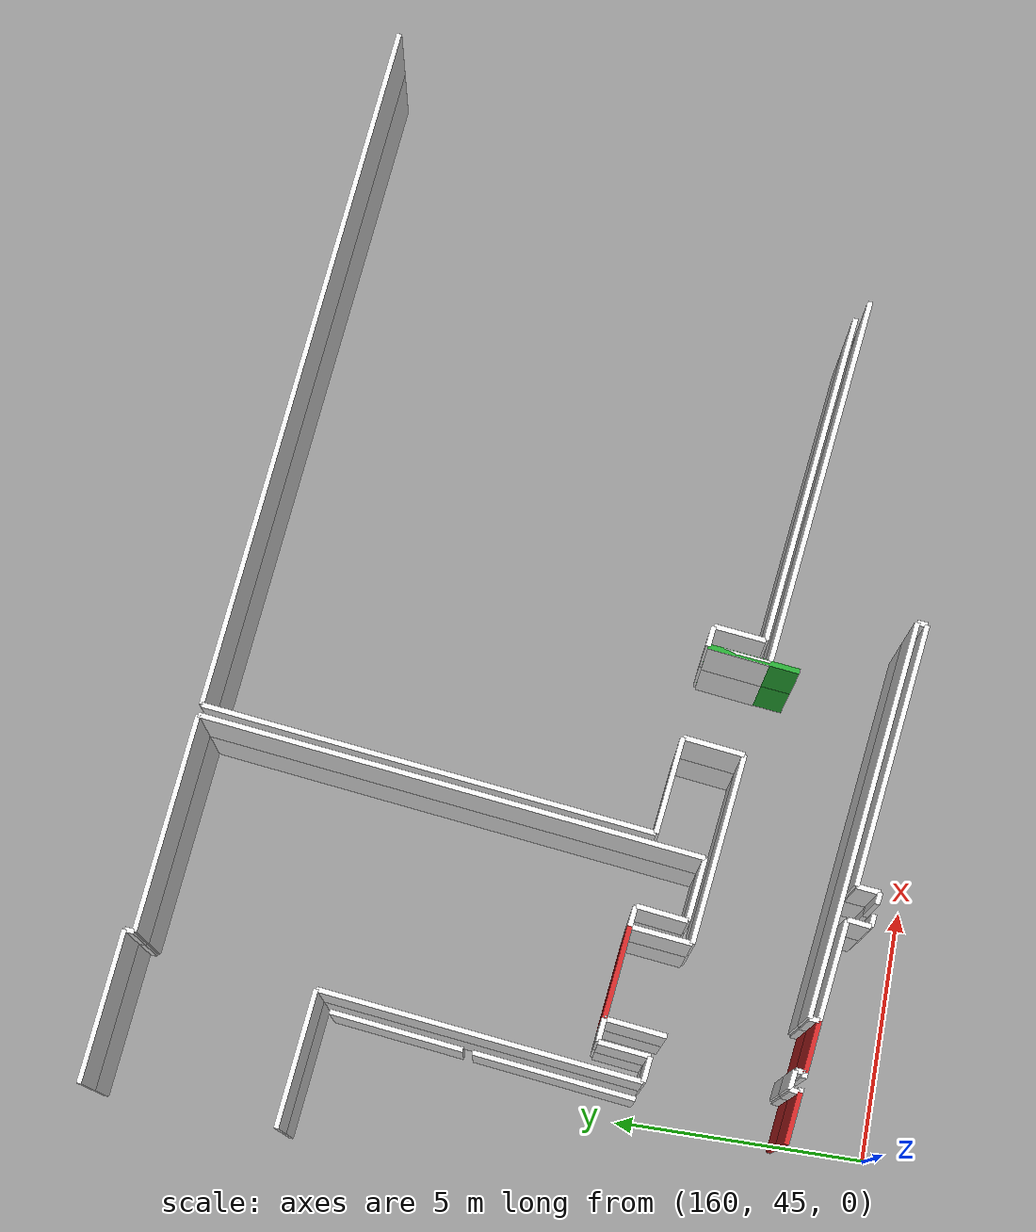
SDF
<sdf version="1.6">
 <world name="default">
  <model name="wall_160.4_46.8_1.5">
   <static>true</static>
   <pose>160.3850000000093 46.81999999983236 1.5 0 0 -0.1206236686924795</pose>
   <link name="link">
    <visual name="visual">
     <geometry><box><size>0.9972462083198822 0.1 3</size></box></geometry>
     <material>
      <script><uri>file://media/materials/scripts/gazebo.material</uri><name>Gazebo/Red</name></script>
     </material>
    </visual>
    <collision name="collision"><geometry><box><size>0.9972462083198822 0.1 3</size></box></geometry></collision>
   </link>
  </model>
  <model name="wall_161.8_46.7_1.5">
   <static>true</static>
   <pose>161.7600000000093 46.66000000014901 1.5 0 0 -0.11942892612851068</pose>
   <link name="link">
    <visual name="visual">
     <geometry><box><size>1.0071742649744493 0.1 3</size></box></geometry>
     <material>
      <script><uri>file://media/materials/scripts/gazebo.material</uri><name>Gazebo/Red</name></script>
     </material>
    </visual>
    <collision name="collision"><geometry><box><size>1.0071742649744493 0.1 3</size></box></geometry></collision>
   </link>
  </model>
  <model name="wall_168.8_48.8_1.5">
   <static>true</static>
   <pose>168.83500000002095 48.825000000186265 1.5 0 0 -1.6875809222415865</pose>
   <link name="link">
    <visual name="visual">
     <geometry><box><size>1.8022763384447233 0.1 3</size></box></geometry>
     <material>
      <script><uri>file://media/materials/scripts/gazebo.material</uri><name>Gazebo/Green</name></script>
     </material>
    </visual>
    <collision name="collision"><geometry><box><size>1.8022763384447233 0.1 3</size></box></geometry></collision>
   </link>
  </model>
  <model name="wall_162.6_50.5_1.5">
   <static>true</static>
   <pose>162.57000000000698 50.484999999869615 1.5 0 0 3.02415796381574</pose>
   <link name="link">
    <visual name="visual">
     <geometry><box><size>1.7923448329168745 0.1 3</size></box></geometry>
     <material>
      <script><uri>file://media/materials/scripts/gazebo.material</uri><name>Gazebo/Red</name></script>
     </material>
    </visual>
    <collision name="collision"><geometry><box><size>1.7923448329168745 0.1 3</size></box></geometry></collision>
   </link>
  </model>
  <model name="wall_160.4_46.8_4.5">
   <static>true</static>
   <pose>160.3850000000093 46.81999999983236 4.5 0 0 -0.1206236686924795</pose>
   <link name="link">
    <visual name="visual">
     <geometry><box><size>0.9972462083198822 0.1 3</size></box></geometry>
     <material>
      <script><uri>file://media/materials/scripts/gazebo.material</uri><name>Gazebo/Red</name></script>
     </material>
    </visual>
    <collision name="collision"><geometry><box><size>0.9972462083198822 0.1 3</size></box></geometry></collision>
   </link>
  </model>
  <model name="wall_161.8_46.7_4.5">
   <static>true</static>
   <pose>161.7600000000093 46.66000000014901 4.5 0 0 -0.11942892612851068</pose>
   <link name="link">
    <visual name="visual">
     <geometry><box><size>1.0071742649744493 0.1 3</size></box></geometry>
     <material>
      <script><uri>file://media/materials/scripts/gazebo.material</uri><name>Gazebo/Red</name></script>
     </material>
    </visual>
    <collision name="collision"><geometry><box><size>1.0071742649744493 0.1 3</size></box></geometry></collision>
   </link>
  </model>
  <model name="wall_168.8_48.8_4.5">
   <static>true</static>
   <pose>168.83500000002095 48.825000000186265 4.5 0 0 -1.6875809222415865</pose>
   <link name="link">
    <visual name="visual">
     <geometry><box><size>1.8022763384447233 0.1 3</size></box></geometry>
     <material>
      <script><uri>file://media/materials/scripts/gazebo.material</uri><name>Gazebo/Green</name></script>
     </material>
    </visual>
    <collision name="collision"><geometry><box><size>1.8022763384447233 0.1 3</size></box></geometry></collision>
   </link>
  </model>
  <model name="wall_162.6_50.5_4.5">
   <static>true</static>
   <pose>162.57000000000698 50.484999999869615 4.5 0 0 3.02415796381574</pose>
   <link name="link">
    <visual name="visual">
     <geometry><box><size>1.7923448329168745 0.1 3</size></box></geometry>
     <material>
      <script><uri>file://media/materials/scripts/gazebo.material</uri><name>Gazebo/Red</name></script>
     </material>
    </visual>
    <collision name="collision"><geometry><box><size>1.7923448329168745 0.1 3</size></box></geometry></collision>
   </link>
  </model>
  <model name="wall_166.1_46.3_1.5">
   <static>true</static>
   <pose>166.14500000001863 46.324999999953434 1.5 0 0 3.0218576675715907</pose>
   <link name="link">
    <visual name="visual">
     <geometry><box><size>7.7857433813364185 0.1 3</size></box></geometry>
     <material>
      <script><uri>file://media/materials/scripts/gazebo.material</uri><name>Gazebo/White</name></script>
     </material>
    </visual>
    <collision name="collision"><geometry><box><size>7.7857433813364185 0.1 3</size></box></geometry></collision>
   </link>
  </model>
  <model name="wall_162.3_46.7_1.5">
   <static>true</static>
   <pose>162.27000000001863 46.69500000006519 1.5 0 0 -1.675673265652709</pose>
   <link name="link">
    <visual name="visual">
     <geometry><box><size>0.19104973169180559 0.1 3</size></box></geometry>
     <material>
      <script><uri>file://media/materials/scripts/gazebo.material</uri><name>Gazebo/White</name></script>
     </material>
    </visual>
    <collision name="collision"><geometry><box><size>0.19104973169180559 0.1 3</size></box></geometry></collision>
   </link>
  </model>
  <model name="wall_161.3_46.8_1.5">
   <static>true</static>
   <pose>161.27000000001863 46.81500000017695 1.5 0 0 1.4659193879370842</pose>
   <link name="link">
    <visual name="visual">
     <geometry><box><size>0.19104973169180559 0.1 3</size></box></geometry>
     <material>
      <script><uri>file://media/materials/scripts/gazebo.material</uri><name>Gazebo/White</name></script>
     </material>
    </visual>
    <collision name="collision"><geometry><box><size>0.19104973169180559 0.1 3</size></box></geometry></collision>
   </link>
  </model>
  <model name="wall_161.1_46.9_1.5">
   <static>true</static>
   <pose>161.09500000000116 46.93500000005588 1.5 0 0 3.007271212150422</pose>
   <link name="link">
    <visual name="visual">
     <geometry><box><size>0.3733630940800139 0.1 3</size></box></geometry>
     <material>
      <script><uri>file://media/materials/scripts/gazebo.material</uri><name>Gazebo/White</name></script>
     </material>
    </visual>
    <collision name="collision"><geometry><box><size>0.3733630940800139 0.1 3</size></box></geometry></collision>
   </link>
  </model>
  <model name="wall_160.9_46.9_1.5">
   <static>true</static>
   <pose>160.89499999998952 46.859999999869615 1.5 0 0 -1.7196862741197598</pose>
   <link name="link">
    <visual name="visual">
     <geometry><box><size>0.20223748434128064 0.1 3</size></box></geometry>
     <material>
      <script><uri>file://media/materials/scripts/gazebo.material</uri><name>Gazebo/White</name></script>
     </material>
    </visual>
    <collision name="collision"><geometry><box><size>0.20223748434128064 0.1 3</size></box></geometry></collision>
   </link>
  </model>
  <model name="wall_161.6_50.0_1.5">
   <static>true</static>
   <pose>161.60500000001048 49.984999999869615 1.5 0 0 1.4474586259198403</pose>
   <link name="link">
    <visual name="visual">
     <geometry><box><size>1.2192620718694447 0.1 3</size></box></geometry>
     <material>
      <script><uri>file://media/materials/scripts/gazebo.material</uri><name>Gazebo/White</name></script>
     </material>
    </visual>
    <collision name="collision"><geometry><box><size>1.2192620718694447 0.1 3</size></box></geometry></collision>
   </link>
  </model>
  <model name="wall_163.4_49.8_1.5">
   <static>true</static>
   <pose>163.39000000001397 49.77499999990687 1.5 0 0 -1.6859866085024886</pose>
   <link name="link">
    <visual name="visual">
     <geometry><box><size>1.2180722474113592 0.1 3</size></box></geometry>
     <material>
      <script><uri>file://media/materials/scripts/gazebo.material</uri><name>Gazebo/White</name></script>
     </material>
    </visual>
    <collision name="collision"><geometry><box><size>1.2180722474113592 0.1 3</size></box></geometry></collision>
   </link>
  </model>
  <model name="wall_165.2_48.9_1.5">
   <static>true</static>
   <pose>165.1600000000035 48.949999999953434 1.5 0 0 -0.11900029336803308</pose>
   <link name="link">
    <visual name="visual">
     <geometry><box><size>3.7062110031539515 0.1 3</size></box></geometry>
     <material>
      <script><uri>file://media/materials/scripts/gazebo.material</uri><name>Gazebo/White</name></script>
     </material>
    </visual>
    <collision name="collision"><geometry><box><size>3.7062110031539515 0.1 3</size></box></geometry></collision>
   </link>
  </model>
  <model name="wall_167.1_49.3_1.5">
   <static>true</static>
   <pose>167.07500000001164 49.330000000074506 1.5 0 0 1.446441332248135</pose>
   <link name="link">
    <visual name="visual">
     <geometry><box><size>1.2093386624324964 0.1 3</size></box></geometry>
     <material>
      <script><uri>file://media/materials/scripts/gazebo.material</uri><name>Gazebo/White</name></script>
     </material>
    </visual>
    <collision name="collision"><geometry><box><size>1.2093386624324964 0.1 3</size></box></geometry></collision>
   </link>
  </model>
  <model name="wall_168.9_49.1_1.5">
   <static>true</static>
   <pose>168.8649999999907 49.11499999999069 1.5 0 0 -1.6941340276703445</pose>
   <link name="link">
    <visual name="visual">
     <geometry><box><size>1.2192620723387293 0.1 3</size></box></geometry>
     <material>
      <script><uri>file://media/materials/scripts/gazebo.material</uri><name>Gazebo/White</name></script>
     </material>
    </visual>
    <collision name="collision"><geometry><box><size>1.2192620723387293 0.1 3</size></box></geometry></collision>
   </link>
  </model>
  <model name="wall_172.4_48.1_1.5">
   <static>true</static>
   <pose>172.40499999999884 48.074999999953434 1.5 0 0 -0.11975615108864926</pose>
   <link name="link">
    <visual name="visual">
     <geometry><box><size>7.2821562740685915 0.1 3</size></box></geometry>
     <material>
      <script><uri>file://media/materials/scripts/gazebo.material</uri><name>Gazebo/White</name></script>
     </material>
    </visual>
    <collision name="collision"><geometry><box><size>7.2821562740685915 0.1 3</size></box></geometry></collision>
   </link>
  </model>
  <model name="wall_164.7_45.8_1.5">
   <static>true</static>
   <pose>164.7050000000163 45.83499999996275 1.5 0 0 -0.12970253828111597</pose>
   <link name="link">
    <visual name="visual">
     <geometry><box><size>0.23194827011012187 0.1 3</size></box></geometry>
     <material>
      <script><uri>file://media/materials/scripts/gazebo.material</uri><name>Gazebo/White</name></script>
     </material>
    </visual>
    <collision name="collision"><geometry><box><size>0.23194827011012187 0.1 3</size></box></geometry></collision>
   </link>
  </model>
  <model name="wall_164.8_46.0_1.5">
   <static>true</static>
   <pose>164.84500000000116 46.049999999813735 1.5 0 0 1.4625257359507529</pose>
   <link name="link">
    <visual name="visual">
     <geometry><box><size>0.46270941201207827 0.1 3</size></box></geometry>
     <material>
      <script><uri>file://media/materials/scripts/gazebo.material</uri><name>Gazebo/White</name></script>
     </material>
    </visual>
    <collision name="collision"><geometry><box><size>0.46270941201207827 0.1 3</size></box></geometry></collision>
   </link>
  </model>
  <model name="wall_167.4_46.0_1.5">
   <static>true</static>
   <pose>167.42999999999302 45.9749999998603 1.5 0 0 -0.11858166439217471</pose>
   <link name="link">
    <visual name="visual">
     <geometry><box><size>5.156209848308469 0.1 3</size></box></geometry>
     <material>
      <script><uri>file://media/materials/scripts/gazebo.material</uri><name>Gazebo/White</name></script>
     </material>
    </visual>
    <collision name="collision"><geometry><box><size>5.156209848308469 0.1 3</size></box></geometry></collision>
   </link>
  </model>
  <model name="wall_160.6_51.4_1.5">
   <static>true</static>
   <pose>160.60999999998603 51.35000000009313 1.5 0 0 1.4487071893822745</pose>
   <link name="link">
    <visual name="visual">
     <geometry><box><size>3.284448203056534 0.1 3</size></box></geometry>
     <material>
      <script><uri>file://media/materials/scripts/gazebo.material</uri><name>Gazebo/White</name></script>
     </material>
    </visual>
    <collision name="collision"><geometry><box><size>3.284448203056534 0.1 3</size></box></geometry></collision>
   </link>
  </model>
  <model name="wall_160.4_59.9_1.5">
   <static>true</static>
   <pose>160.44000000000233 59.93999999994412 1.5 0 0 -0.12022278677294355</pose>
   <link name="link">
    <visual name="visual">
     <geometry><box><size>3.0016662039824453 0.1 3</size></box></geometry>
     <material>
      <script><uri>file://media/materials/scripts/gazebo.material</uri><name>Gazebo/White</name></script>
     </material>
    </visual>
    <collision name="collision"><geometry><box><size>3.0016662039824453 0.1 3</size></box></geometry></collision>
   </link>
  </model>
  <model name="wall_161.9_59.7_1.5">
   <static>true</static>
   <pose>161.9199999999837 59.66499999980442 1.5 0 0 -1.675673265652709</pose>
   <link name="link">
    <visual name="visual">
     <geometry><box><size>0.19104973169180559 0.1 3</size></box></geometry>
     <material>
      <script><uri>file://media/materials/scripts/gazebo.material</uri><name>Gazebo/White</name></script>
     </material>
    </visual>
    <collision name="collision"><geometry><box><size>0.19104973169180559 0.1 3</size></box></geometry></collision>
   </link>
  </model>
  <model name="wall_164.0_59.3_1.5">
   <static>true</static>
   <pose>164.02999999999884 59.31499999994412 1.5 0 0 -0.11970791786700266</pose>
   <link name="link">
    <visual name="visual">
     <geometry><box><size>4.27056202392456 0.1 3</size></box></geometry>
     <material>
      <script><uri>file://media/materials/scripts/gazebo.material</uri><name>Gazebo/White</name></script>
     </material>
    </visual>
    <collision name="collision"><geometry><box><size>4.27056202392456 0.1 3</size></box></geometry></collision>
   </link>
  </model>
  <model name="wall_165.6_54.1_1.5">
   <static>true</static>
   <pose>165.55000000001746 54.11499999999069 1.5 0 0 -1.691540779261425</pose>
   <link name="link">
    <visual name="visual">
     <geometry><box><size>9.96253481813775 0.1 3</size></box></geometry>
     <material>
      <script><uri>file://media/materials/scripts/gazebo.material</uri><name>Gazebo/White</name></script>
     </material>
    </visual>
    <collision name="collision"><geometry><box><size>9.96253481813775 0.1 3</size></box></geometry></collision>
   </link>
  </model>
  <model name="wall_164.3_49.2_1.5">
   <static>true</static>
   <pose>164.3399999999965 49.24499999987893 1.5 0 0 3.0192558198525035</pose>
   <link name="link">
    <visual name="visual">
     <geometry><box><size>1.2291867230188886 0.1 3</size></box></geometry>
     <material>
      <script><uri>file://media/materials/scripts/gazebo.material</uri><name>Gazebo/White</name></script>
     </material>
    </visual>
    <collision name="collision"><geometry><box><size>1.2291867230188886 0.1 3</size></box></geometry></collision>
   </link>
  </model>
  <model name="wall_163.8_49.8_1.5">
   <static>true</static>
   <pose>163.7949999999837 49.824999999953434 1.5 0 0 1.44278726814752</pose>
   <link name="link">
    <visual name="visual">
     <geometry><box><size>1.0183319696888344 0.1 3</size></box></geometry>
     <material>
      <script><uri>file://media/materials/scripts/gazebo.material</uri><name>Gazebo/White</name></script>
     </material>
    </visual>
    <collision name="collision"><geometry><box><size>1.0183319696888344 0.1 3</size></box></geometry></collision>
   </link>
  </model>
  <model name="wall_163.7_50.4_1.5">
   <static>true</static>
   <pose>163.6600000000035 50.35499999998137 1.5 0 0 3.017237659490783</pose>
   <link name="link">
    <visual name="visual">
     <geometry><box><size>0.4031128873571693 0.1 3</size></box></geometry>
     <material>
      <script><uri>file://media/materials/scripts/gazebo.material</uri><name>Gazebo/White</name></script>
     </material>
    </visual>
    <collision name="collision"><geometry><box><size>0.4031128873571693 0.1 3</size></box></geometry></collision>
   </link>
  </model>
  <model name="wall_161.5_50.6_1.5">
   <static>true</static>
   <pose>161.4549999999872 50.61499999999069 1.5 0 0 3.030935431805427</pose>
   <link name="link">
    <visual name="visual">
     <geometry><box><size>0.4527692569492954 0.1 3</size></box></geometry>
     <material>
      <script><uri>file://media/materials/scripts/gazebo.material</uri><name>Gazebo/White</name></script>
     </material>
    </visual>
    <collision name="collision"><geometry><box><size>0.4527692569492954 0.1 3</size></box></geometry></collision>
   </link>
  </model>
  <model name="wall_161.2_50.1_1.5">
   <static>true</static>
   <pose>161.1699999999837 50.13500000000931 1.5 0 0 -1.6890538359013414</pose>
   <link name="link">
    <visual name="visual">
     <geometry><box><size>1.0171037314295985 0.1 3</size></box></geometry>
     <material>
      <script><uri>file://media/materials/scripts/gazebo.material</uri><name>Gazebo/White</name></script>
     </material>
    </visual>
    <collision name="collision"><geometry><box><size>1.0171037314295985 0.1 3</size></box></geometry></collision>
   </link>
  </model>
  <model name="wall_160.9_49.7_1.5">
   <static>true</static>
   <pose>160.8649999999907 49.65999999991618 1.5 0 0 3.019750216455228</pose>
   <link name="link">
    <visual name="visual">
     <geometry><box><size>0.4936598018854468 0.1 3</size></box></geometry>
     <material>
      <script><uri>file://media/materials/scripts/gazebo.material</uri><name>Gazebo/White</name></script>
     </material>
    </visual>
    <collision name="collision"><geometry><box><size>0.4936598018854468 0.1 3</size></box></geometry></collision>
   </link>
  </model>
  <model name="wall_161.0_52.9_1.5">
   <static>true</static>
   <pose>161.0 52.85499999998137 1.5 0 0 1.4513051071243046</pose>
   <link name="link">
    <visual name="visual">
     <geometry><box><size>6.375460767737294 0.1 3</size></box></geometry>
     <material>
      <script><uri>file://media/materials/scripts/gazebo.material</uri><name>Gazebo/White</name></script>
     </material>
    </visual>
    <collision name="collision"><geometry><box><size>6.375460767737294 0.1 3</size></box></geometry></collision>
   </link>
  </model>
  <model name="wall_160.0_56.2_1.5">
   <static>true</static>
   <pose>160.04000000000815 56.17999999993481 1.5 0 0 3.0227523090833937</pose>
   <link name="link">
    <visual name="visual">
     <geometry><box><size>2.6990368652271632 0.1 3</size></box></geometry>
     <material>
      <script><uri>file://media/materials/scripts/gazebo.material</uri><name>Gazebo/White</name></script>
     </material>
    </visual>
    <collision name="collision"><geometry><box><size>2.6990368652271632 0.1 3</size></box></geometry></collision>
   </link>
  </model>
  <model name="wall_172.4_48.3_1.5">
   <static>true</static>
   <pose>172.43499999999767 48.26000000000931 1.5 0 0 3.0208760957199403</pose>
   <link name="link">
    <visual name="visual">
     <geometry><box><size>6.4771367131116735 0.1 3</size></box></geometry>
     <material>
      <script><uri>file://media/materials/scripts/gazebo.material</uri><name>Gazebo/White</name></script>
     </material>
    </visual>
    <collision name="collision"><geometry><box><size>6.4771367131116735 0.1 3</size></box></geometry></collision>
   </link>
  </model>
  <model name="wall_169.3_49.2_1.5">
   <static>true</static>
   <pose>169.27999999999884 49.15999999991618 1.5 0 0 1.453687582178367</pose>
   <link name="link">
    <visual name="visual">
     <geometry><box><size>1.0270345661421774 0.1 3</size></box></geometry>
     <material>
      <script><uri>file://media/materials/scripts/gazebo.material</uri><name>Gazebo/White</name></script>
     </material>
    </visual>
    <collision name="collision"><geometry><box><size>1.0270345661421774 0.1 3</size></box></geometry></collision>
   </link>
  </model>
  <model name="wall_169.1_49.7_1.5">
   <static>true</static>
   <pose>169.14000000001397 49.69500000006519 1.5 0 0 3.01723765836245</pose>
   <link name="link">
    <visual name="visual">
     <geometry><box><size>0.4031128874726857 0.1 3</size></box></geometry>
     <material>
      <script><uri>file://media/materials/scripts/gazebo.material</uri><name>Gazebo/White</name></script>
     </material>
    </visual>
    <collision name="collision"><geometry><box><size>0.4031128874726857 0.1 3</size></box></geometry></collision>
   </link>
  </model>
  <model name="wall_166.2_50.0_1.5">
   <static>true</static>
   <pose>166.21000000002095 50.045000000158325 1.5 0 0 3.0198571684511863</pose>
   <link name="link">
    <visual name="visual">
     <geometry><box><size>1.894016895386348 0.1 3</size></box></geometry>
     <material>
      <script><uri>file://media/materials/scripts/gazebo.material</uri><name>Gazebo/White</name></script>
     </material>
    </visual>
    <collision name="collision"><geometry><box><size>1.894016895386348 0.1 3</size></box></geometry></collision>
   </link>
  </model>
  <model name="wall_165.8_54.6_1.5">
   <static>true</static>
   <pose>165.80999999999767 54.59499999997206 1.5 0 0 1.4496339921387622</pose>
   <link name="link">
    <visual name="visual">
     <geometry><box><size>8.935507819571937 0.1 3</size></box></geometry>
     <material>
      <script><uri>file://media/materials/scripts/gazebo.material</uri><name>Gazebo/White</name></script>
     </material>
    </visual>
    <collision name="collision"><geometry><box><size>8.935507819571937 0.1 3</size></box></geometry></collision>
   </link>
  </model>
  <model name="wall_173.1_58.2_1.5">
   <static>true</static>
   <pose>173.09500000000116 58.21999999997206 1.5 0 0 -0.11951661708533105</pose>
   <link name="link">
    <visual name="visual">
     <geometry><box><size>13.586923860836658 0.1 3</size></box></geometry>
     <material>
      <script><uri>file://media/materials/scripts/gazebo.material</uri><name>Gazebo/White</name></script>
     </material>
    </visual>
    <collision name="collision"><geometry><box><size>13.586923860836658 0.1 3</size></box></geometry></collision>
   </link>
  </model>
  <model name="wall_160.9_46.8_1.5">
   <static>true</static>
   <pose>160.92499999998836 46.75499999988824 1.5 0 0 -0.11065721876040727</pose>
   <link name="link">
    <visual name="visual">
     <geometry><box><size>0.09055385132429387 0.1 3</size></box></geometry>
     <material>
      <script><uri>file://media/materials/scripts/gazebo.material</uri><name>Gazebo/White</name></script>
     </material>
    </visual>
    <collision name="collision"><geometry><box><size>0.09055385132429387 0.1 3</size></box></geometry></collision>
   </link>
  </model>
  <model name="wall_161.2_46.7_1.5">
   <static>true</static>
   <pose>161.20999999999185 46.72500000009313 1.5 0 0 -0.09966865024353948</pose>
   <link name="link">
    <visual name="visual">
     <geometry><box><size>0.10049875622371936 0.1 3</size></box></geometry>
     <material>
      <script><uri>file://media/materials/scripts/gazebo.material</uri><name>Gazebo/White</name></script>
     </material>
    </visual>
    <collision name="collision"><geometry><box><size>0.10049875622371936 0.1 3</size></box></geometry></collision>
   </link>
  </model>
  <model name="wall_163.2_46.5_1.5">
   <static>true</static>
   <pose>163.2399999999907 46.47999999998137 1.5 0 0 -0.12184243713456504</pose>
   <link name="link">
    <visual name="visual">
     <geometry><box><size>1.9746392075417871 0.1 3</size></box></geometry>
     <material>
      <script><uri>file://media/materials/scripts/gazebo.material</uri><name>Gazebo/White</name></script>
     </material>
    </visual>
    <collision name="collision"><geometry><box><size>1.9746392075417871 0.1 3</size></box></geometry></collision>
   </link>
  </model>
  <model name="wall_164.2_46.1_1.5">
   <static>true</static>
   <pose>164.18999999997322 46.12999999988824 1.5 0 0 -1.7004988639562184</pose>
   <link name="link">
    <visual name="visual">
     <geometry><box><size>0.46389654015248694 0.1 3</size></box></geometry>
     <material>
      <script><uri>file://media/materials/scripts/gazebo.material</uri><name>Gazebo/White</name></script>
     </material>
    </visual>
    <collision name="collision"><geometry><box><size>0.46389654015248694 0.1 3</size></box></geometry></collision>
   </link>
  </model>
  <model name="wall_164.3_45.9_1.5">
   <static>true</static>
   <pose>164.27999999999884 45.88500000000931 1.5 0 0 -0.12435499368110904</pose>
   <link name="link">
    <visual name="visual">
     <geometry><box><size>0.24186773247205975 0.1 3</size></box></geometry>
     <material>
      <script><uri>file://media/materials/scripts/gazebo.material</uri><name>Gazebo/White</name></script>
     </material>
    </visual>
    <collision name="collision"><geometry><box><size>0.24186773247205975 0.1 3</size></box></geometry></collision>
   </link>
  </model>
  <model name="wall_161.0_54.5_1.5">
   <static>true</static>
   <pose>160.99499999999534 54.50499999988824 1.5 0 0 1.4478244572426628</pose>
   <link name="link">
    <visual name="visual">
     <geometry><box><size>2.6903159664943592 0.1 3</size></box></geometry>
     <material>
      <script><uri>file://media/materials/scripts/gazebo.material</uri><name>Gazebo/White</name></script>
     </material>
    </visual>
    <collision name="collision"><geometry><box><size>2.6903159664943592 0.1 3</size></box></geometry></collision>
   </link>
  </model>
  <model name="wall_170.0_45.8_4.5">
   <static>true</static>
   <pose>170.0 45.764999999897555 4.5 0 0 1.4659193879370842</pose>
   <link name="link">
    <visual name="visual">
     <geometry><box><size>0.19104973169180559 0.1 3</size></box></geometry>
     <material>
      <script><uri>file://media/materials/scripts/gazebo.material</uri><name>Gazebo/White</name></script>
     </material>
    </visual>
    <collision name="collision"><geometry><box><size>0.19104973169180559 0.1 3</size></box></geometry></collision>
   </link>
  </model>
  <model name="wall_166.1_46.3_4.5">
   <static>true</static>
   <pose>166.14500000001863 46.324999999953434 4.5 0 0 3.0218576675715907</pose>
   <link name="link">
    <visual name="visual">
     <geometry><box><size>7.7857433813364185 0.1 3</size></box></geometry>
     <material>
      <script><uri>file://media/materials/scripts/gazebo.material</uri><name>Gazebo/White</name></script>
     </material>
    </visual>
    <collision name="collision"><geometry><box><size>7.7857433813364185 0.1 3</size></box></geometry></collision>
   </link>
  </model>
  <model name="wall_162.3_46.7_4.5">
   <static>true</static>
   <pose>162.27000000001863 46.69500000006519 4.5 0 0 -1.675673265652709</pose>
   <link name="link">
    <visual name="visual">
     <geometry><box><size>0.19104973169180559 0.1 3</size></box></geometry>
     <material>
      <script><uri>file://media/materials/scripts/gazebo.material</uri><name>Gazebo/White</name></script>
     </material>
    </visual>
    <collision name="collision"><geometry><box><size>0.19104973169180559 0.1 3</size></box></geometry></collision>
   </link>
  </model>
  <model name="wall_161.3_46.8_4.5">
   <static>true</static>
   <pose>161.27000000001863 46.81500000017695 4.5 0 0 1.4659193879370842</pose>
   <link name="link">
    <visual name="visual">
     <geometry><box><size>0.19104973169180559 0.1 3</size></box></geometry>
     <material>
      <script><uri>file://media/materials/scripts/gazebo.material</uri><name>Gazebo/White</name></script>
     </material>
    </visual>
    <collision name="collision"><geometry><box><size>0.19104973169180559 0.1 3</size></box></geometry></collision>
   </link>
  </model>
  <model name="wall_161.1_46.9_4.5">
   <static>true</static>
   <pose>161.09500000000116 46.93500000005588 4.5 0 0 3.007271212150422</pose>
   <link name="link">
    <visual name="visual">
     <geometry><box><size>0.3733630940800139 0.1 3</size></box></geometry>
     <material>
      <script><uri>file://media/materials/scripts/gazebo.material</uri><name>Gazebo/White</name></script>
     </material>
    </visual>
    <collision name="collision"><geometry><box><size>0.3733630940800139 0.1 3</size></box></geometry></collision>
   </link>
  </model>
  <model name="wall_160.9_46.9_4.5">
   <static>true</static>
   <pose>160.89499999998952 46.859999999869615 4.5 0 0 -1.7196862741197598</pose>
   <link name="link">
    <visual name="visual">
     <geometry><box><size>0.20223748434128064 0.1 3</size></box></geometry>
     <material>
      <script><uri>file://media/materials/scripts/gazebo.material</uri><name>Gazebo/White</name></script>
     </material>
    </visual>
    <collision name="collision"><geometry><box><size>0.20223748434128064 0.1 3</size></box></geometry></collision>
   </link>
  </model>
  <model name="wall_161.6_50.0_4.5">
   <static>true</static>
   <pose>161.60500000001048 49.984999999869615 4.5 0 0 1.4474586259198403</pose>
   <link name="link">
    <visual name="visual">
     <geometry><box><size>1.2192620718694447 0.1 3</size></box></geometry>
     <material>
      <script><uri>file://media/materials/scripts/gazebo.material</uri><name>Gazebo/White</name></script>
     </material>
    </visual>
    <collision name="collision"><geometry><box><size>1.2192620718694447 0.1 3</size></box></geometry></collision>
   </link>
  </model>
  <model name="wall_163.4_49.8_4.5">
   <static>true</static>
   <pose>163.39000000001397 49.77499999990687 4.5 0 0 -1.6859866085024886</pose>
   <link name="link">
    <visual name="visual">
     <geometry><box><size>1.2180722474113592 0.1 3</size></box></geometry>
     <material>
      <script><uri>file://media/materials/scripts/gazebo.material</uri><name>Gazebo/White</name></script>
     </material>
    </visual>
    <collision name="collision"><geometry><box><size>1.2180722474113592 0.1 3</size></box></geometry></collision>
   </link>
  </model>
  <model name="wall_165.2_48.9_4.5">
   <static>true</static>
   <pose>165.1600000000035 48.949999999953434 4.5 0 0 -0.11900029336803308</pose>
   <link name="link">
    <visual name="visual">
     <geometry><box><size>3.7062110031539515 0.1 3</size></box></geometry>
     <material>
      <script><uri>file://media/materials/scripts/gazebo.material</uri><name>Gazebo/White</name></script>
     </material>
    </visual>
    <collision name="collision"><geometry><box><size>3.7062110031539515 0.1 3</size></box></geometry></collision>
   </link>
  </model>
  <model name="wall_167.1_49.3_4.5">
   <static>true</static>
   <pose>167.07500000001164 49.330000000074506 4.5 0 0 1.446441332248135</pose>
   <link name="link">
    <visual name="visual">
     <geometry><box><size>1.2093386624324964 0.1 3</size></box></geometry>
     <material>
      <script><uri>file://media/materials/scripts/gazebo.material</uri><name>Gazebo/White</name></script>
     </material>
    </visual>
    <collision name="collision"><geometry><box><size>1.2093386624324964 0.1 3</size></box></geometry></collision>
   </link>
  </model>
  <model name="wall_168.9_49.1_4.5">
   <static>true</static>
   <pose>168.8649999999907 49.11499999999069 4.5 0 0 -1.6941340276703445</pose>
   <link name="link">
    <visual name="visual">
     <geometry><box><size>1.2192620723387293 0.1 3</size></box></geometry>
     <material>
      <script><uri>file://media/materials/scripts/gazebo.material</uri><name>Gazebo/White</name></script>
     </material>
    </visual>
    <collision name="collision"><geometry><box><size>1.2192620723387293 0.1 3</size></box></geometry></collision>
   </link>
  </model>
  <model name="wall_172.4_48.1_4.5">
   <static>true</static>
   <pose>172.40499999999884 48.074999999953434 4.5 0 0 -0.11975615108864926</pose>
   <link name="link">
    <visual name="visual">
     <geometry><box><size>7.2821562740685915 0.1 3</size></box></geometry>
     <material>
      <script><uri>file://media/materials/scripts/gazebo.material</uri><name>Gazebo/White</name></script>
     </material>
    </visual>
    <collision name="collision"><geometry><box><size>7.2821562740685915 0.1 3</size></box></geometry></collision>
   </link>
  </model>
  <model name="wall_164.7_45.8_4.5">
   <static>true</static>
   <pose>164.7050000000163 45.83499999996275 4.5 0 0 -0.12970253828111597</pose>
   <link name="link">
    <visual name="visual">
     <geometry><box><size>0.23194827011012187 0.1 3</size></box></geometry>
     <material>
      <script><uri>file://media/materials/scripts/gazebo.material</uri><name>Gazebo/White</name></script>
     </material>
    </visual>
    <collision name="collision"><geometry><box><size>0.23194827011012187 0.1 3</size></box></geometry></collision>
   </link>
  </model>
  <model name="wall_164.8_46.0_4.5">
   <static>true</static>
   <pose>164.84500000000116 46.049999999813735 4.5 0 0 1.4625257359507529</pose>
   <link name="link">
    <visual name="visual">
     <geometry><box><size>0.46270941201207827 0.1 3</size></box></geometry>
     <material>
      <script><uri>file://media/materials/scripts/gazebo.material</uri><name>Gazebo/White</name></script>
     </material>
    </visual>
    <collision name="collision"><geometry><box><size>0.46270941201207827 0.1 3</size></box></geometry></collision>
   </link>
  </model>
  <model name="wall_167.4_46.0_4.5">
   <static>true</static>
   <pose>167.42999999999302 45.9749999998603 4.5 0 0 -0.11858166439217471</pose>
   <link name="link">
    <visual name="visual">
     <geometry><box><size>5.156209848308469 0.1 3</size></box></geometry>
     <material>
      <script><uri>file://media/materials/scripts/gazebo.material</uri><name>Gazebo/White</name></script>
     </material>
    </visual>
    <collision name="collision"><geometry><box><size>5.156209848308469 0.1 3</size></box></geometry></collision>
   </link>
  </model>
  <model name="wall_160.4_59.9_4.5">
   <static>true</static>
   <pose>160.44000000000233 59.93999999994412 4.5 0 0 -0.12022278677294355</pose>
   <link name="link">
    <visual name="visual">
     <geometry><box><size>3.0016662039824453 0.1 3</size></box></geometry>
     <material>
      <script><uri>file://media/materials/scripts/gazebo.material</uri><name>Gazebo/White</name></script>
     </material>
    </visual>
    <collision name="collision"><geometry><box><size>3.0016662039824453 0.1 3</size></box></geometry></collision>
   </link>
  </model>
  <model name="wall_161.9_59.7_4.5">
   <static>true</static>
   <pose>161.9199999999837 59.66499999980442 4.5 0 0 -1.675673265652709</pose>
   <link name="link">
    <visual name="visual">
     <geometry><box><size>0.19104973169180559 0.1 3</size></box></geometry>
     <material>
      <script><uri>file://media/materials/scripts/gazebo.material</uri><name>Gazebo/White</name></script>
     </material>
    </visual>
    <collision name="collision"><geometry><box><size>0.19104973169180559 0.1 3</size></box></geometry></collision>
   </link>
  </model>
  <model name="wall_164.0_59.3_4.5">
   <static>true</static>
   <pose>164.02999999999884 59.31499999994412 4.5 0 0 -0.11970791786700266</pose>
   <link name="link">
    <visual name="visual">
     <geometry><box><size>4.27056202392456 0.1 3</size></box></geometry>
     <material>
      <script><uri>file://media/materials/scripts/gazebo.material</uri><name>Gazebo/White</name></script>
     </material>
    </visual>
    <collision name="collision"><geometry><box><size>4.27056202392456 0.1 3</size></box></geometry></collision>
   </link>
  </model>
  <model name="wall_165.6_54.1_4.5">
   <static>true</static>
   <pose>165.55000000001746 54.11499999999069 4.5 0 0 -1.691540779261425</pose>
   <link name="link">
    <visual name="visual">
     <geometry><box><size>9.96253481813775 0.1 3</size></box></geometry>
     <material>
      <script><uri>file://media/materials/scripts/gazebo.material</uri><name>Gazebo/White</name></script>
     </material>
    </visual>
    <collision name="collision"><geometry><box><size>9.96253481813775 0.1 3</size></box></geometry></collision>
   </link>
  </model>
  <model name="wall_164.3_49.2_4.5">
   <static>true</static>
   <pose>164.3399999999965 49.24499999987893 4.5 0 0 3.0192558198525035</pose>
   <link name="link">
    <visual name="visual">
     <geometry><box><size>1.2291867230188886 0.1 3</size></box></geometry>
     <material>
      <script><uri>file://media/materials/scripts/gazebo.material</uri><name>Gazebo/White</name></script>
     </material>
    </visual>
    <collision name="collision"><geometry><box><size>1.2291867230188886 0.1 3</size></box></geometry></collision>
   </link>
  </model>
  <model name="wall_163.8_49.8_4.5">
   <static>true</static>
   <pose>163.7949999999837 49.824999999953434 4.5 0 0 1.44278726814752</pose>
   <link name="link">
    <visual name="visual">
     <geometry><box><size>1.0183319696888344 0.1 3</size></box></geometry>
     <material>
      <script><uri>file://media/materials/scripts/gazebo.material</uri><name>Gazebo/White</name></script>
     </material>
    </visual>
    <collision name="collision"><geometry><box><size>1.0183319696888344 0.1 3</size></box></geometry></collision>
   </link>
  </model>
  <model name="wall_163.7_50.4_4.5">
   <static>true</static>
   <pose>163.6600000000035 50.35499999998137 4.5 0 0 3.017237659490783</pose>
   <link name="link">
    <visual name="visual">
     <geometry><box><size>0.4031128873571693 0.1 3</size></box></geometry>
     <material>
      <script><uri>file://media/materials/scripts/gazebo.material</uri><name>Gazebo/White</name></script>
     </material>
    </visual>
    <collision name="collision"><geometry><box><size>0.4031128873571693 0.1 3</size></box></geometry></collision>
   </link>
  </model>
  <model name="wall_161.5_50.6_4.5">
   <static>true</static>
   <pose>161.4549999999872 50.61499999999069 4.5 0 0 3.030935431805427</pose>
   <link name="link">
    <visual name="visual">
     <geometry><box><size>0.4527692569492954 0.1 3</size></box></geometry>
     <material>
      <script><uri>file://media/materials/scripts/gazebo.material</uri><name>Gazebo/White</name></script>
     </material>
    </visual>
    <collision name="collision"><geometry><box><size>0.4527692569492954 0.1 3</size></box></geometry></collision>
   </link>
  </model>
  <model name="wall_161.2_50.1_4.5">
   <static>true</static>
   <pose>161.1699999999837 50.13500000000931 4.5 0 0 -1.6890538359013414</pose>
   <link name="link">
    <visual name="visual">
     <geometry><box><size>1.0171037314295985 0.1 3</size></box></geometry>
     <material>
      <script><uri>file://media/materials/scripts/gazebo.material</uri><name>Gazebo/White</name></script>
     </material>
    </visual>
    <collision name="collision"><geometry><box><size>1.0171037314295985 0.1 3</size></box></geometry></collision>
   </link>
  </model>
  <model name="wall_160.9_49.7_4.5">
   <static>true</static>
   <pose>160.8649999999907 49.65999999991618 4.5 0 0 3.019750216455228</pose>
   <link name="link">
    <visual name="visual">
     <geometry><box><size>0.4936598018854468 0.1 3</size></box></geometry>
     <material>
      <script><uri>file://media/materials/scripts/gazebo.material</uri><name>Gazebo/White</name></script>
     </material>
    </visual>
    <collision name="collision"><geometry><box><size>0.4936598018854468 0.1 3</size></box></geometry></collision>
   </link>
  </model>
  <model name="wall_161.0_52.9_4.5">
   <static>true</static>
   <pose>161.0 52.85499999998137 4.5 0 0 1.4513051071243046</pose>
   <link name="link">
    <visual name="visual">
     <geometry><box><size>6.375460767737294 0.1 3</size></box></geometry>
     <material>
      <script><uri>file://media/materials/scripts/gazebo.material</uri><name>Gazebo/White</name></script>
     </material>
    </visual>
    <collision name="collision"><geometry><box><size>6.375460767737294 0.1 3</size></box></geometry></collision>
   </link>
  </model>
  <model name="wall_160.0_56.2_4.5">
   <static>true</static>
   <pose>160.04000000000815 56.17999999993481 4.5 0 0 3.0227523090833937</pose>
   <link name="link">
    <visual name="visual">
     <geometry><box><size>2.6990368652271632 0.1 3</size></box></geometry>
     <material>
      <script><uri>file://media/materials/scripts/gazebo.material</uri><name>Gazebo/White</name></script>
     </material>
    </visual>
    <collision name="collision"><geometry><box><size>2.6990368652271632 0.1 3</size></box></geometry></collision>
   </link>
  </model>
  <model name="wall_172.4_48.3_4.5">
   <static>true</static>
   <pose>172.43499999999767 48.26000000000931 4.5 0 0 3.0208760957199403</pose>
   <link name="link">
    <visual name="visual">
     <geometry><box><size>6.4771367131116735 0.1 3</size></box></geometry>
     <material>
      <script><uri>file://media/materials/scripts/gazebo.material</uri><name>Gazebo/White</name></script>
     </material>
    </visual>
    <collision name="collision"><geometry><box><size>6.4771367131116735 0.1 3</size></box></geometry></collision>
   </link>
  </model>
  <model name="wall_169.3_49.2_4.5">
   <static>true</static>
   <pose>169.27999999999884 49.15999999991618 4.5 0 0 1.453687582178367</pose>
   <link name="link">
    <visual name="visual">
     <geometry><box><size>1.0270345661421774 0.1 3</size></box></geometry>
     <material>
      <script><uri>file://media/materials/scripts/gazebo.material</uri><name>Gazebo/White</name></script>
     </material>
    </visual>
    <collision name="collision"><geometry><box><size>1.0270345661421774 0.1 3</size></box></geometry></collision>
   </link>
  </model>
  <model name="wall_169.1_49.7_4.5">
   <static>true</static>
   <pose>169.14000000001397 49.69500000006519 4.5 0 0 3.01723765836245</pose>
   <link name="link">
    <visual name="visual">
     <geometry><box><size>0.4031128874726857 0.1 3</size></box></geometry>
     <material>
      <script><uri>file://media/materials/scripts/gazebo.material</uri><name>Gazebo/White</name></script>
     </material>
    </visual>
    <collision name="collision"><geometry><box><size>0.4031128874726857 0.1 3</size></box></geometry></collision>
   </link>
  </model>
  <model name="wall_166.2_50.0_4.5">
   <static>true</static>
   <pose>166.21000000002095 50.045000000158325 4.5 0 0 3.0198571684511863</pose>
   <link name="link">
    <visual name="visual">
     <geometry><box><size>1.894016895386348 0.1 3</size></box></geometry>
     <material>
      <script><uri>file://media/materials/scripts/gazebo.material</uri><name>Gazebo/White</name></script>
     </material>
    </visual>
    <collision name="collision"><geometry><box><size>1.894016895386348 0.1 3</size></box></geometry></collision>
   </link>
  </model>
  <model name="wall_165.8_54.6_4.5">
   <static>true</static>
   <pose>165.80999999999767 54.59499999997206 4.5 0 0 1.4496339921387622</pose>
   <link name="link">
    <visual name="visual">
     <geometry><box><size>8.935507819571937 0.1 3</size></box></geometry>
     <material>
      <script><uri>file://media/materials/scripts/gazebo.material</uri><name>Gazebo/White</name></script>
     </material>
    </visual>
    <collision name="collision"><geometry><box><size>8.935507819571937 0.1 3</size></box></geometry></collision>
   </link>
  </model>
  <model name="wall_173.1_58.2_4.5">
   <static>true</static>
   <pose>173.09500000000116 58.21999999997206 4.5 0 0 -0.11951661708533105</pose>
   <link name="link">
    <visual name="visual">
     <geometry><box><size>13.586923860836658 0.1 3</size></box></geometry>
     <material>
      <script><uri>file://media/materials/scripts/gazebo.material</uri><name>Gazebo/White</name></script>
     </material>
    </visual>
    <collision name="collision"><geometry><box><size>13.586923860836658 0.1 3</size></box></geometry></collision>
   </link>
  </model>
  <model name="wall_160.9_46.8_4.5">
   <static>true</static>
   <pose>160.92499999998836 46.75499999988824 4.5 0 0 -0.11065721876040727</pose>
   <link name="link">
    <visual name="visual">
     <geometry><box><size>0.09055385132429387 0.1 3</size></box></geometry>
     <material>
      <script><uri>file://media/materials/scripts/gazebo.material</uri><name>Gazebo/White</name></script>
     </material>
    </visual>
    <collision name="collision"><geometry><box><size>0.09055385132429387 0.1 3</size></box></geometry></collision>
   </link>
  </model>
  <model name="wall_161.2_46.7_4.5">
   <static>true</static>
   <pose>161.20999999999185 46.72500000009313 4.5 0 0 -0.09966865024353948</pose>
   <link name="link">
    <visual name="visual">
     <geometry><box><size>0.10049875622371936 0.1 3</size></box></geometry>
     <material>
      <script><uri>file://media/materials/scripts/gazebo.material</uri><name>Gazebo/White</name></script>
     </material>
    </visual>
    <collision name="collision"><geometry><box><size>0.10049875622371936 0.1 3</size></box></geometry></collision>
   </link>
  </model>
  <model name="wall_163.2_46.5_4.5">
   <static>true</static>
   <pose>163.2399999999907 46.47999999998137 4.5 0 0 -0.12184243713456504</pose>
   <link name="link">
    <visual name="visual">
     <geometry><box><size>1.9746392075417871 0.1 3</size></box></geometry>
     <material>
      <script><uri>file://media/materials/scripts/gazebo.material</uri><name>Gazebo/White</name></script>
     </material>
    </visual>
    <collision name="collision"><geometry><box><size>1.9746392075417871 0.1 3</size></box></geometry></collision>
   </link>
  </model>
  <model name="wall_164.2_46.1_4.5">
   <static>true</static>
   <pose>164.18999999997322 46.12999999988824 4.5 0 0 -1.7004988639562184</pose>
   <link name="link">
    <visual name="visual">
     <geometry><box><size>0.46389654015248694 0.1 3</size></box></geometry>
     <material>
      <script><uri>file://media/materials/scripts/gazebo.material</uri><name>Gazebo/White</name></script>
     </material>
    </visual>
    <collision name="collision"><geometry><box><size>0.46389654015248694 0.1 3</size></box></geometry></collision>
   </link>
  </model>
  <model name="wall_164.3_45.9_4.5">
   <static>true</static>
   <pose>164.27999999999884 45.88500000000931 4.5 0 0 -0.12435499368110904</pose>
   <link name="link">
    <visual name="visual">
     <geometry><box><size>0.24186773247205975 0.1 3</size></box></geometry>
     <material>
      <script><uri>file://media/materials/scripts/gazebo.material</uri><name>Gazebo/White</name></script>
     </material>
    </visual>
    <collision name="collision"><geometry><box><size>0.24186773247205975 0.1 3</size></box></geometry></collision>
   </link>
  </model>
 </world>
</sdf>
